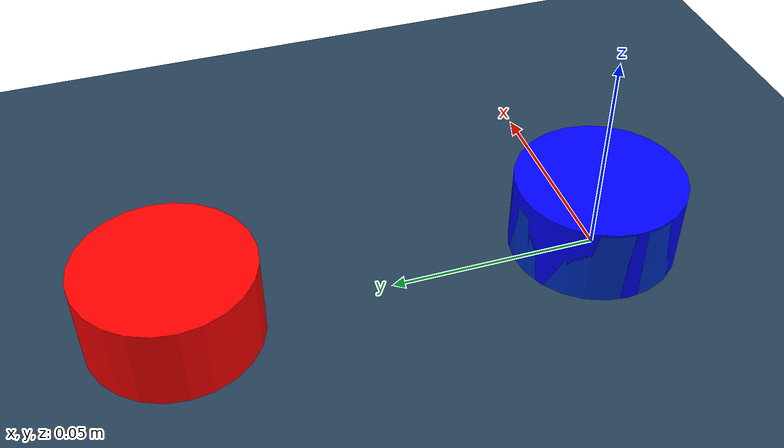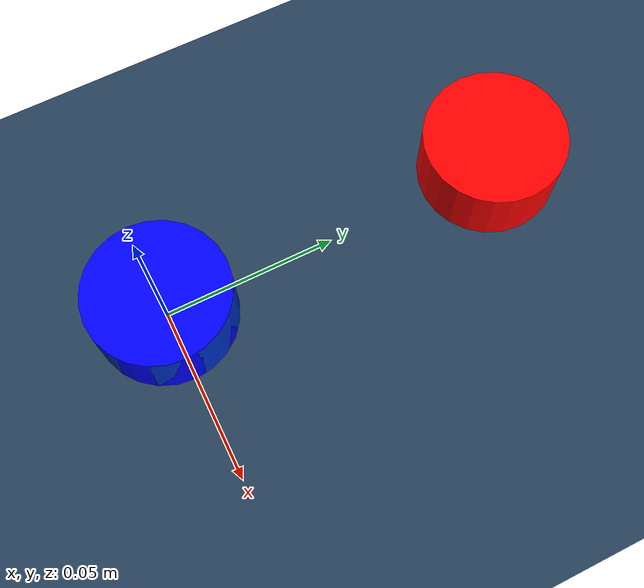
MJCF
<mujoco model="push_scene">
  <!-- Include the push model -->
  <include file="push.xml"/>

  <statistic center="0 0 0" extent="0.9"/>

  <visual>
    <headlight diffuse="0.6 0.6 0.6" ambient="0.3 0.3 0.3" specular="0 0 0"/>
    <rgba haze="0.15 0.25 0.35 1"/>
  </visual>

  <asset>
    <texture type="skybox" builtin="gradient" rgb1="0.3 0.5 0.7" rgb2="0 0 0" width="512" height="3072"/>
    <texture type="2d" name="groundplane" builtin="checker" mark="edge" rgb1="0.2 0.3 0.4" rgb2="0.1 0.2 0.3"
      markrgb="0.8 0.8 0.8" width="300" height="300"/>
    <material name="groundplane" texture="groundplane" texuniform="true" texrepeat="5 5" reflectance="0.2"/>
  </asset>

  <worldbody>
    <light pos="0 0 1"/>
    <geom name="floor" size="0 0 .125" type="plane" material="groundplane"/>
  </worldbody>
</mujoco>

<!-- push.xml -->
<mujoco model="push">
  <option timestep="0.01" iterations="1" ls_iterations="4" />

  <default>
    <velocity ctrllimited="true" ctrlrange="-1.0 1.0" kv="0.1"/>
    <default class="goal">
      <geom conaffinity="0" contype="0" rgba="0 1 0 0.2"/>
    </default>
    <geom friction="1.0" solimp="0.0 0.95 0.005" solref="0.02 1"/>
  </default>

  <worldbody>
    <!-- Goal position -->
    <body name="goal" mocap="true" pos="0.0 0.0 0.009">
      <geom class="goal" name="goal_geom" type="cylinder" size="0.02 0.01" rgba="0 1 0 0.2"/>
    </body>

    <!-- Object to be pushed -->
    <body name="object" pos="0.0 0.0 0.0095">
      <joint name="object_x" type="slide" pos="0 0 0" axis="1 0 0" />
      <joint name="object_y" type="slide" pos="0 0 0" axis="0 1 0" />
      <geom name="object_geom" type="cylinder" size="0.02 0.01" rgba="0 0 1 1" />
    </body>

    <!-- Robot (actuated cylinder) -->
    <body name="robot" pos="0.0 0.1 0.011">
      <joint name="robot_x" type="slide" pos="0 0 0" axis="1 0 0" />
      <joint name="robot_y" type="slide" pos="0 0 0" axis="0 1 0" />
      <geom name="robot_geom" type="cylinder" size="0.02 0.01" rgba="1 0 0 1" />
      <site name="robot_site" pos="0 0 0" rgba="0 0 0 0"/>
    </body>
  </worldbody>

  <actuator>
    <velocity name="x_motor" joint="robot_x" />
    <velocity name="y_motor" joint="robot_y" />
  </actuator>

  <sensor>
    <framepos name="position" objtype="body" objname="object" reftype="body" refname="goal"/>
  </sensor>
</mujoco>
